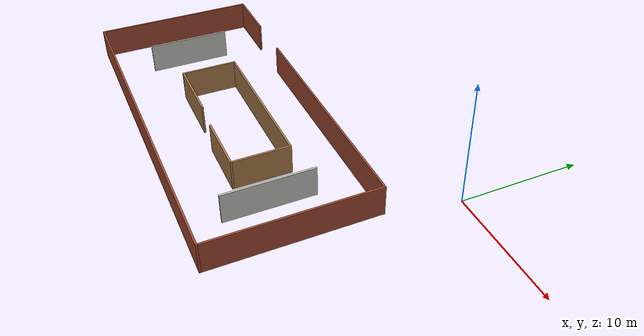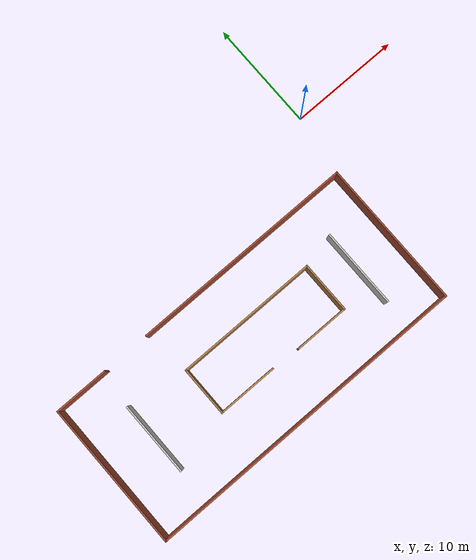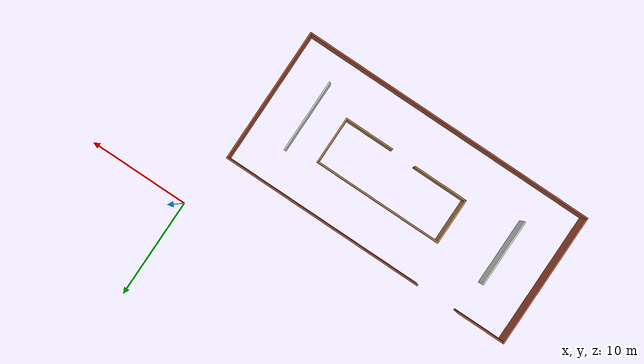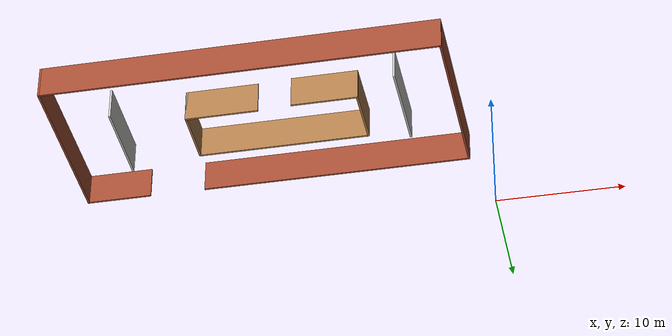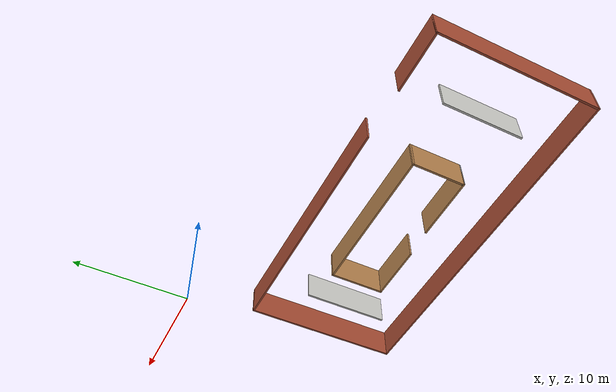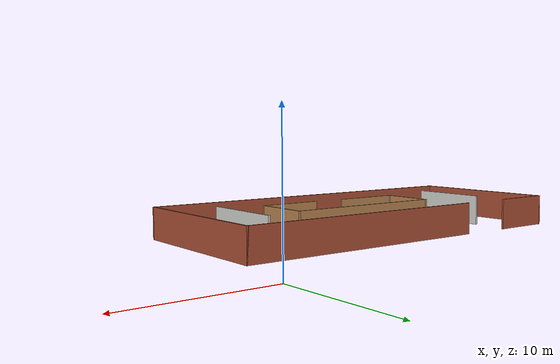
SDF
<?xml version='1.0'?>
<sdf version='1.7'>
  <model name='sample_world_2'>
    <pose>-15.425 -9.57481 0 0 -0 0</pose>
    <link name='Wall_14'>
      <collision name='Wall_14_Collision'>
        <geometry>
          <box>
            <size>20.5 0.15 2.5</size>
          </box>
        </geometry>
        <pose>0 0 1.25 0 -0 0</pose>
      </collision>
      <visual name='Wall_14_Visual'>
        <pose>0 0 1.25 0 -0 0</pose>
        <geometry>
          <box>
            <size>20.5 0.15 2.5</size>
          </box>
        </geometry>
        <material>
          <script>
            <uri>file://media/materials/scripts/gazebo.material</uri>
            <name>Gazebo/Bricks</name>
          </script>
          <ambient>1 1 1 1</ambient>
        </material>
        <meta>
          <layer>0</layer>
        </meta>
      </visual>
      <pose>4.07501 3.85019 0 0 -0 0</pose>
    </link>
    <link name='Wall_15'>
      <collision name='Wall_15_Collision'>
        <geometry>
          <box>
            <size>13.5 0.15 2.5</size>
          </box>
        </geometry>
        <pose>0 0 1.25 0 -0 0</pose>
      </collision>
      <visual name='Wall_15_Visual'>
        <pose>0 0 1.25 0 -0 0</pose>
        <geometry>
          <box>
            <size>13.5 0.15 2.5</size>
          </box>
        </geometry>
        <material>
          <script>
            <uri>file://media/materials/scripts/gazebo.material</uri>
            <name>Gazebo/Bricks</name>
          </script>
          <ambient>1 1 1 1</ambient>
        </material>
        <meta>
          <layer>0</layer>
        </meta>
      </visual>
      <pose>14.25 -2.82481 0 0 -0 -1.5708</pose>
    </link>
    <link name='Wall_16'>
      <collision name='Wall_16_Collision'>
        <geometry>
          <box>
            <size>29.75 0.15 2.5</size>
          </box>
        </geometry>
        <pose>0 0 1.25 0 -0 0</pose>
      </collision>
      <visual name='Wall_16_Visual'>
        <pose>0 0 1.25 0 -0 0</pose>
        <geometry>
          <box>
            <size>29.75 0.15 2.5</size>
          </box>
        </geometry>
        <material>
          <script>
            <uri>file://media/materials/scripts/gazebo.material</uri>
            <name>Gazebo/Bricks</name>
          </script>
          <ambient>1 1 1 1</ambient>
        </material>
        <meta>
          <layer>0</layer>
        </meta>
      </visual>
      <pose>-0.549992 -9.49981 0 0 -0 3.14159</pose>
    </link>
    <link name='Wall_17'>
      <collision name='Wall_17_Collision'>
        <geometry>
          <box>
            <size>13.5 0.15 2.5</size>
          </box>
        </geometry>
        <pose>0 0 1.25 0 -0 0</pose>
      </collision>
      <visual name='Wall_17_Visual'>
        <pose>0 0 1.25 0 -0 0</pose>
        <geometry>
          <box>
            <size>13.5 0.15 2.5</size>
          </box>
        </geometry>
        <material>
          <script>
            <uri>file://media/materials/scripts/gazebo.material</uri>
            <name>Gazebo/Bricks</name>
          </script>
          <ambient>1 1 1 1</ambient>
        </material>
        <meta>
          <layer>0</layer>
        </meta>
      </visual>
      <pose>-15.35 -2.82481 0 0 -0 1.5708</pose>
    </link>
    <link name='Wall_18'>
      <collision name='Wall_18_Collision'>
        <geometry>
          <box>
            <size>5 0.15 2.5</size>
          </box>
        </geometry>
        <pose>0 0 1.25 0 -0 0</pose>
      </collision>
      <visual name='Wall_18_Visual'>
        <pose>0 0 1.25 0 -0 0</pose>
        <geometry>
          <box>
            <size>5 0.15 2.5</size>
          </box>
        </geometry>
        <material>
          <script>
            <uri>file://media/materials/scripts/gazebo.material</uri>
            <name>Gazebo/Bricks</name>
          </script>
          <ambient>1 1 1 1</ambient>
        </material>
        <meta>
          <layer>0</layer>
        </meta>
      </visual>
      <pose>-12.925 3.85019 0 0 -0 0</pose>
    </link>
    <link name='Wall_20'>
      <collision name='Wall_20_Collision'>
        <geometry>
          <box>
            <size>13 0.15 2.5</size>
          </box>
        </geometry>
        <pose>0 0 1.25 0 -0 0</pose>
      </collision>
      <visual name='Wall_20_Visual'>
        <pose>0 0 1.25 0 -0 0</pose>
        <geometry>
          <box>
            <size>13 0.15 2.5</size>
          </box>
        </geometry>
        <material>
          <script>
            <uri>file://media/materials/scripts/gazebo.material</uri>
            <name>Gazebo/Wood</name>
          </script>
          <ambient>1 1 1 1</ambient>
        </material>
        <meta>
          <layer>0</layer>
        </meta>
      </visual>
      <pose>0.929819 -0.336963 0 0 -0 0</pose>
    </link>
    <link name='Wall_21'>
      <collision name='Wall_21_Collision'>
        <geometry>
          <box>
            <size>4.75 0.15 2.5</size>
          </box>
        </geometry>
        <pose>0 0 1.25 0 -0 0</pose>
      </collision>
      <visual name='Wall_21_Visual'>
        <pose>0 0 1.25 0 -0 0</pose>
        <geometry>
          <box>
            <size>4.75 0.15 2.5</size>
          </box>
        </geometry>
        <material>
          <script>
            <uri>file://media/materials/scripts/gazebo.material</uri>
            <name>Gazebo/Wood</name>
          </script>
          <ambient>1 1 1 1</ambient>
        </material>
        <meta>
          <layer>0</layer>
        </meta>
      </visual>
      <pose>7.35482 -2.63696 0 0 -0 -1.5708</pose>
    </link>
    <link name='Wall_22'>
      <collision name='Wall_22_Collision'>
        <geometry>
          <box>
            <size>5 0.15 2.5</size>
          </box>
        </geometry>
        <pose>0 0 1.25 0 -0 0</pose>
      </collision>
      <visual name='Wall_22_Visual'>
        <pose>0 0 1.25 0 -0 0</pose>
        <geometry>
          <box>
            <size>5 0.15 2.5</size>
          </box>
        </geometry>
        <material>
          <script>
            <uri>file://media/materials/scripts/gazebo.material</uri>
            <name>Gazebo/Wood</name>
          </script>
          <ambient>1 1 1 1</ambient>
        </material>
        <meta>
          <layer>0</layer>
        </meta>
      </visual>
      <pose>4.92982 -4.93696 0 0 -0 3.14159</pose>
    </link>
    <link name='Wall_24'>
      <collision name='Wall_24_Collision'>
        <geometry>
          <box>
            <size>4.5 0.15 2.5</size>
          </box>
        </geometry>
        <pose>0 0 1.25 0 -0 0</pose>
      </collision>
      <visual name='Wall_24_Visual'>
        <pose>0 0 1.25 0 -0 0</pose>
        <geometry>
          <box>
            <size>4.5 0.15 2.5</size>
          </box>
        </geometry>
        <material>
          <script>
            <uri>file://media/materials/scripts/gazebo.material</uri>
            <name>Gazebo/Wood</name>
          </script>
          <ambient>1 1 1 1</ambient>
        </material>
        <meta>
          <layer>0</layer>
        </meta>
      </visual>
      <pose>-5.49518 -2.51196 0 0 -0 -1.5708</pose>
    </link>
    <link name='Wall_25'>
      <collision name='Wall_25_Collision'>
        <geometry>
          <box>
            <size>0.25 0.15 2.5</size>
          </box>
        </geometry>
        <pose>0 0 1.25 0 -0 0</pose>
      </collision>
      <visual name='Wall_25_Visual'>
        <pose>0 0 1.25 0 -0 0</pose>
        <geometry>
          <box>
            <size>0.25 0.15 2.5</size>
          </box>
        </geometry>
        <material>
          <script>
            <uri>file://media/materials/scripts/gazebo.material</uri>
            <name>Gazebo/Grey</name>
          </script>
          <ambient>1 1 1 1</ambient>
        </material>
        <meta>
          <layer>0</layer>
        </meta>
      </visual>
      <pose>-5.49518 -4.73696 0 0 -0 -1.5708</pose>
    </link>
    <link name='Wall_26'>
      <collision name='Wall_26_Collision'>
        <geometry>
          <box>
            <size>5.5 0.15 2.5</size>
          </box>
        </geometry>
        <pose>0 0 1.25 0 -0 0</pose>
      </collision>
      <visual name='Wall_26_Visual'>
        <pose>0 0 1.25 0 -0 0</pose>
        <geometry>
          <box>
            <size>5.5 0.15 2.5</size>
          </box>
        </geometry>
        <material>
          <script>
            <uri>file://media/materials/scripts/gazebo.material</uri>
            <name>Gazebo/Wood</name>
          </script>
          <ambient>1 1 1 1</ambient>
        </material>
        <meta>
          <layer>0</layer>
        </meta>
      </visual>
      <pose>-2.82018 -4.78696 0 0 -0 0</pose>
    </link>
    <link name='Wall_28'>
      <collision name='Wall_28_Collision'>
        <geometry>
          <box>
            <size>6.75 0.15 2.5</size>
          </box>
        </geometry>
        <pose>0 0 1.25 0 -0 0</pose>
      </collision>
      <visual name='Wall_28_Visual'>
        <pose>0 0 1.25 0 -0 0</pose>
        <geometry>
          <box>
            <size>6.75 0.15 2.5</size>
          </box>
        </geometry>
        <material>
          <script>
            <uri>file://media/materials/scripts/gazebo.material</uri>
            <name>Gazebo/CeilingTiled</name>
          </script>
          <ambient>1 1 1 1</ambient>
        </material>
        <meta>
          <layer>0</layer>
        </meta>
      </visual>
      <pose>-10.9385 -2.80593 0 0 -0 1.5708</pose>
    </link>
    <link name='Wall_30'>
      <collision name='Wall_30_Collision'>
        <geometry>
          <box>
            <size>7.25 0.15 2.5</size>
          </box>
        </geometry>
        <pose>0 0 1.25 0 -0 0</pose>
      </collision>
      <visual name='Wall_30_Visual'>
        <pose>0 0 1.25 0 -0 0</pose>
        <geometry>
          <box>
            <size>7.25 0.15 2.5</size>
          </box>
        </geometry>
        <material>
          <script>
            <uri>file://media/materials/scripts/gazebo.material</uri>
            <name>Gazebo/CeilingTiled</name>
          </script>
          <ambient>1 1 1 1</ambient>
        </material>
        <meta>
          <layer>0</layer>
        </meta>
      </visual>
      <pose>10.416 -3.1891 0 0 -0 -1.5708</pose>
    </link>
    <static>1</static>
  </model>
</sdf>
